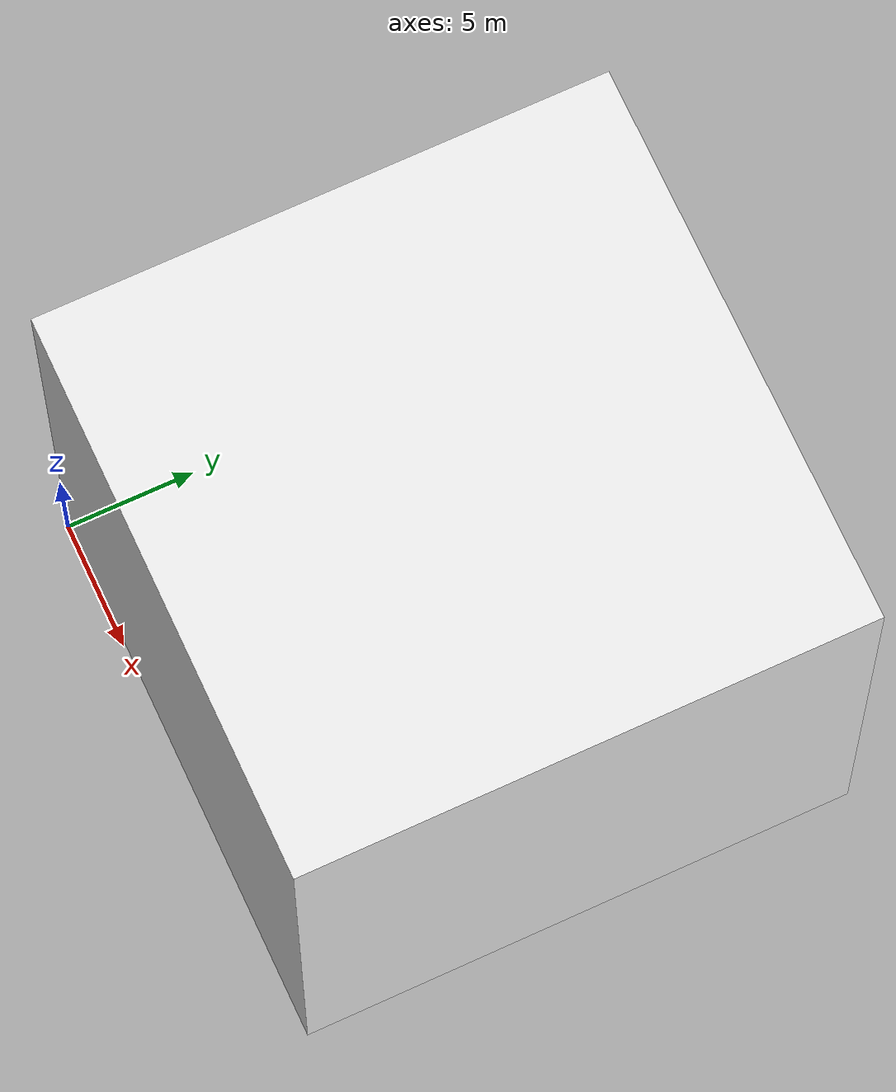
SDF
<?xml version="1.0" ?>
<sdf version="1.6">
  <model name="cube_qr_added">
    <pose>0 0 1 0 0 0</pose>
    <static>true</static>
    <link name="link">
      <visual name="visual">
        <geometry>
          <mesh>
           <scale>10 10 10</scale>
            <uri>model://cube_qr_added/meshes/cube_qr_added.dae</uri>
          </mesh>
        </geometry>
        <material>
          <script>
            <name>Gazebo/White</name>
          </script>
        </material>
      </visual>
    </link>
  </model>
</sdf>
